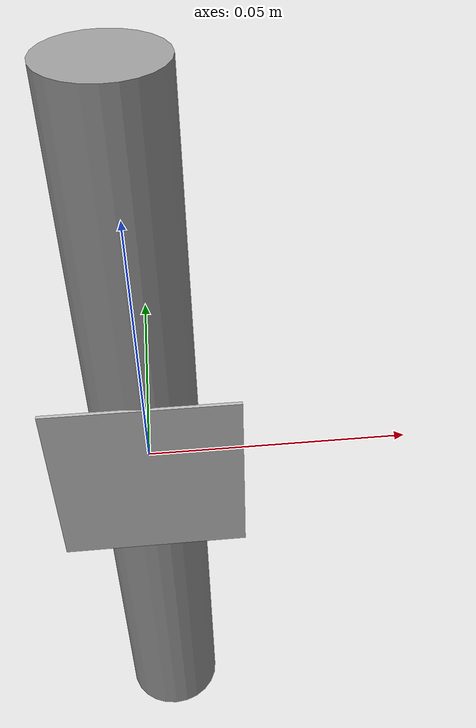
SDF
<?xml version='1.0'?>
<sdf version='1.7'>
  <model name='tallthincylinder_marker13'>
    <link name='link_7'>
      <inertial>
        <mass>3</mass>
        <inertia>
          <ixx>0.145833</ixx>
          <ixy>0</ixy>
          <ixz>0</ixz>
          <iyy>0.145833</iyy>
          <iyz>0</iyz>
          <izz>0.125</izz>
        </inertia>
        <pose>0 0 0 0 -0 0</pose>
      </inertial>
      <pose>0 0 0 0 -0 0</pose>
      <gravity>1</gravity>
      <self_collide>0</self_collide>
      <kinematic>0</kinematic>
      <enable_wind>0</enable_wind>
      <visual name='visual'>
        <pose>0 0 0 0 -0 0</pose>
        <geometry>
          <cylinder>
            <radius>0.01</radius>
            <length>0.15</length>
          </cylinder>
        </geometry>
        <material>
          <lighting>1</lighting>
          <script>
            <uri>file://media/materials/scripts/gazebo.material</uri>
            <name>Gazebo/Grey</name>
          </script>
          <shader type='pixel'>
            <normal_map>__default__</normal_map>
          </shader>
          <ambient>0.3 0.3 0.3 1</ambient>
          <diffuse>0.7 0.7 0.7 1</diffuse>
          <specular>0.01 0.01 0.01 1</specular>
          <emissive>0 0 0 1</emissive>
        </material>
        <transparency>0</transparency>
        <cast_shadows>1</cast_shadows>
      </visual>
      <visual name="marker13">
        <pose>0 -0.01 -0.015 0 -0 4.7124</pose>
        <geometry>
          <mesh>
            <uri>model://marker13/meshes/Marker13.dae</uri>
          <scale>0.07 0.07 0.07</scale></mesh>
        </geometry>
      </visual>
      <collision name='collision'>
        <laser_retro>0</laser_retro>
        <max_contacts>10</max_contacts>
        <pose>0 0 0 0 -0 0</pose>
        <geometry>
          <cylinder>
            <radius>0.01</radius>
            <length>0.15</length>
          </cylinder>
        </geometry>
        <surface>
          <friction>
            <ode>
              <mu>1</mu>
              <mu2>1</mu2>
              <fdir1>0 0 0</fdir1>
              <slip1>0</slip1>
              <slip2>0</slip2>
            </ode>
            <torsional>
              <coefficient>1</coefficient>
              <patch_radius>0</patch_radius>
              <surface_radius>0</surface_radius>
              <use_patch_radius>1</use_patch_radius>
              <ode>
                <slip>0</slip>
              </ode>
            </torsional>
          </friction>
          <bounce>
            <restitution_coefficient>0</restitution_coefficient>
            <threshold>1e+06</threshold>
          </bounce>
          <contact>
            <collide_without_contact>0</collide_without_contact>
            <collide_without_contact_bitmask>1</collide_without_contact_bitmask>
            <collide_bitmask>1</collide_bitmask>
            <ode>
              <soft_cfm>0</soft_cfm>
              <soft_erp>0.2</soft_erp>
              <kp>1e+13</kp>
              <kd>1</kd>
              <max_vel>0.01</max_vel>
              <min_depth>0</min_depth>
            </ode>
            <bullet>
              <split_impulse>1</split_impulse>
              <split_impulse_penetration_threshold>-0.01</split_impulse_penetration_threshold>
              <soft_cfm>0</soft_cfm>
              <soft_erp>0.2</soft_erp>
              <kp>1e+13</kp>
              <kd>1</kd>
            </bullet>
          </contact>
        </surface>
      </collision>
    </link>
    <static>0</static>
    <allow_auto_disable>1</allow_auto_disable>
  </model>
</sdf>
